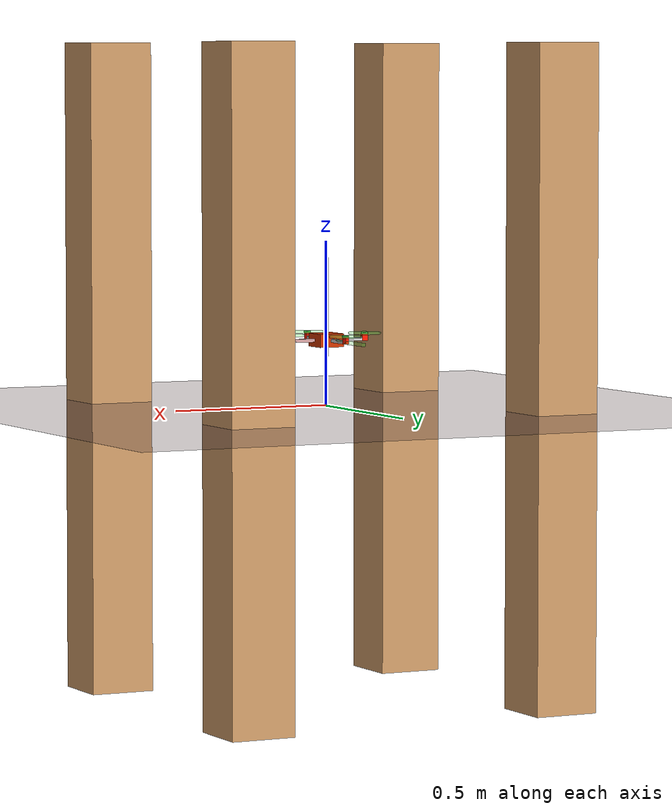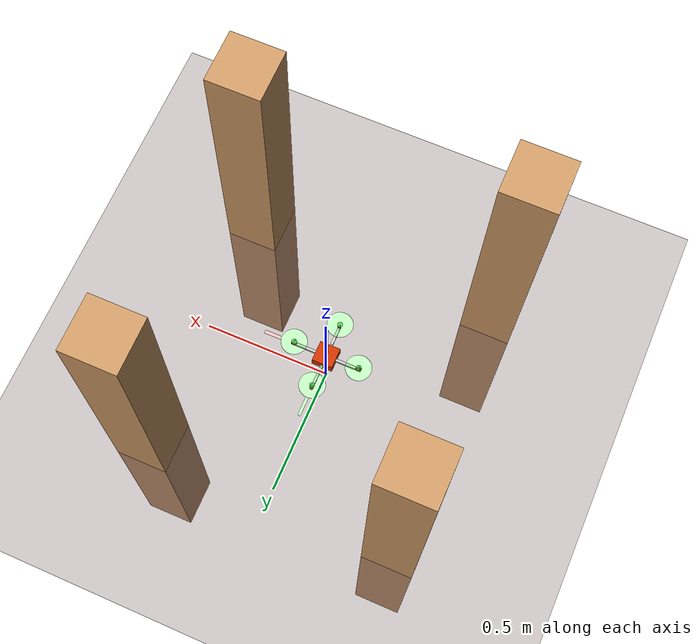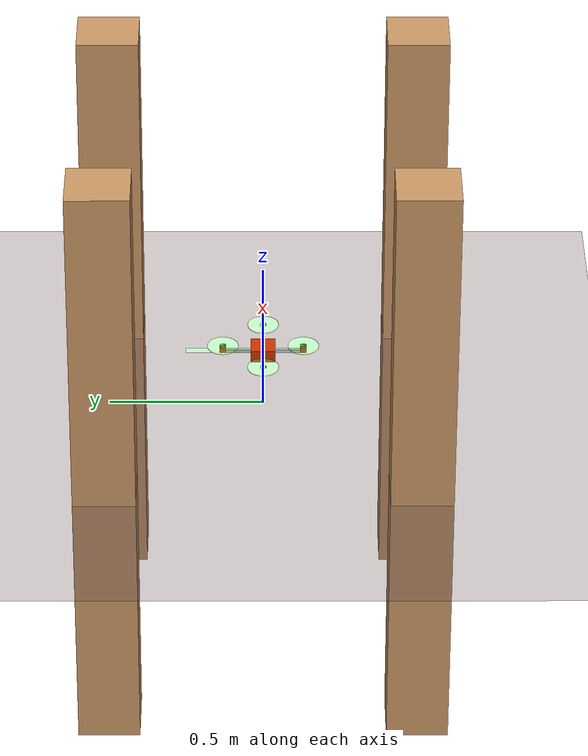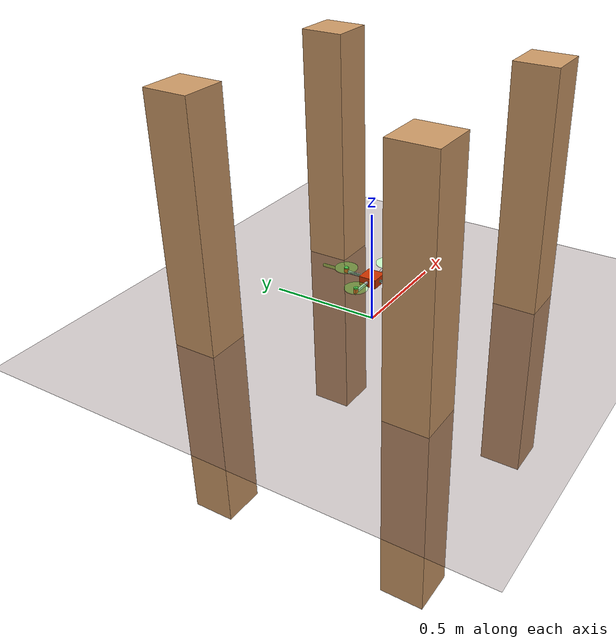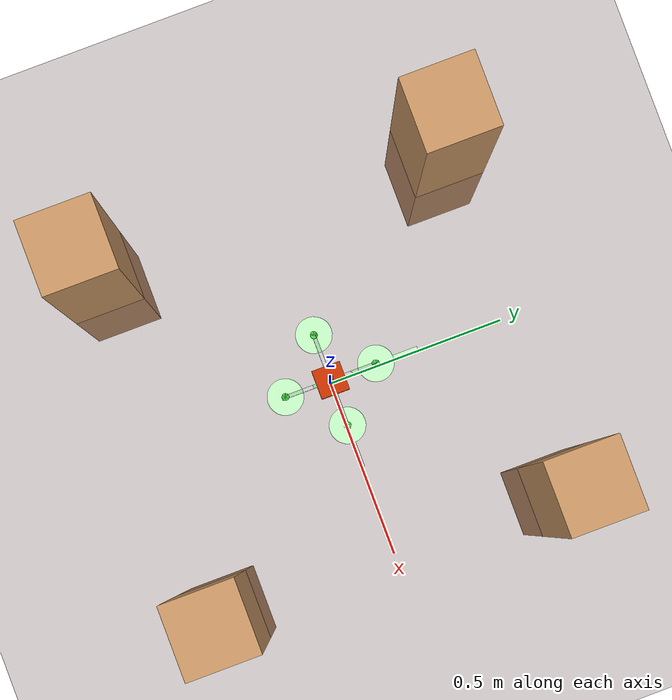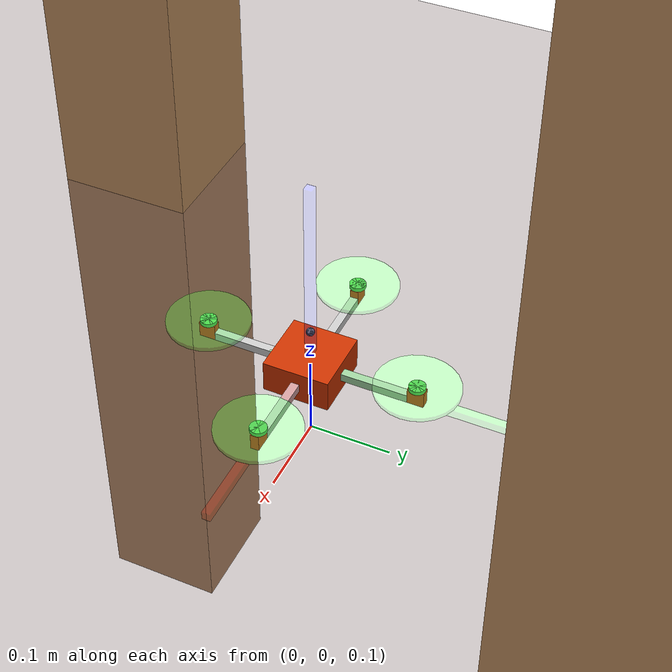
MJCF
<!--
Quadrotor with `+` configuration.
Front: Along body X-axis
-->

<mujoco model="quadrotorplus">
    <compiler angle="degree" inertiafromgeom="true" coordinate="local"/>
    <option	timestep="0.01" gravity="0 0 -9.81" density="1" viscosity="1e-5" integrator="RK4"/>

    <default>
        <joint armature="1" damping="1" limited="true"/>
        <geom conaffinity="0" condim="3" density="5.0" friction="1 0.5 0.5" margin="0.01" rgba="0.8 0.6 0.4 1"/>
    </default>

    <asset>
        <texture builtin="gradient" type="skybox" height="100" width="100" rgb1="1 1 1" rgb2="0 0 0"/>
        <texture name="texgeom" builtin="flat" height="1278" mark="cross" markrgb="1 1 1" random="0.01" rgb1="0.8 0.6 0.4" rgb2="0.8 0.6 0.4" type="cube" width="127"/>
        <texture name="texplane" builtin="checker" height="100" width="100" rgb1="0 0 0" rgb2="0.8 0.8 0.8" type="2d"/>
        <material name="MatPlane" reflectance="0.5" shininess="1" specular="1" texrepeat="60 60" texture="texplane"/>
        <material name="geom" texture="texgeom" texuniform="true"/>
    </asset>

    <worldbody>
        <light cutoff="100" diffuse="1 1 1" dir="-0 0 -1.3" directional="true" exponent="1" pos="0 0 1.3" specular=".1 .1 .1"/>
        <geom conaffinity="1" condim="3" material="MatPlane" name="floor" pos="0 0 0" rgba="0.4 0.3 0.3 1" size="5 5 0.2" type="plane"/>
        <body name="core" pos="0 0 0.2" >
            <geom name="core_geom" type="box" pos="0 0 0" quat="1 0 0 0" size=".04 .04 .02" rgba=".8 .2 0 1" mass=".1"/>
            <joint name="root" type="free" damping="0" armature="0" pos="0 0 0" limited="false"/>
            <geom name="arm_front0" type="box" pos=".08 0 0" size=".04 .005 .005" quat="1 0 0 0" rgba=".8 .8 .8 1" mass=".02"/>
            <geom name="arm_back0" type="box" pos="-.08 0 0" size=".04 .005 .005" quat="0 0 0 1" rgba=".8 .8 .8 1" mass=".02"/>
            <geom name="arm_left0" type="box" pos="0 .08 0" size=".04 .005 .005" quat=".707 0 0 .707" rgba=".8 .8 .8 1" mass=".02"/>
            <geom name="arm_right0" type="box" pos="0 -.08 0" size=".04 .005 .005" quat=".707 0 0 -.707" rgba=".8 .8 .8 1" mass=".02"/>

            <site name="lidar_site_0" pos="0 0 0.05" zaxis="1 0 0" />
            <site name="lidar_site_1" pos="0 0 0.05" zaxis="0 1 0" />
            <site name="lidar_site_2" pos="0 0 0.05" zaxis="-1 0 0 " />
            <site name="lidar_site_3" pos="0 0 0.05" zaxis="0 -1 0" />
            <site name="lidar_site_4" pos="0 0 0.05" euler="90 0 0" />
            <site name="lidar_site_5" pos="0 0 0.05" euler="90 0 0" />
            <site name="lidar_site_6" pos="0 0 0.05" euler="90 0 0 " />
            <site name="lidar_site_7" pos="0 0 0.05" euler="90 0 0" />

            <body name="arm_front1" pos=".12 0 0">
                <geom type="box" pos=".01 0 .005" size=".01 .005 .01" quat="1 0 0 0" rgba="1 .1 0 1" mass=".02"/>
                <body name="thruster0" pos="0.01 0 0.015">
                    <geom type="cylinder" pos="0 0 .0025" size=".05 .0025" quat="1 0 0 0" rgba=".3 1 .3 0.3" mass=".005"/>
                    <site name="motor0" type="cylinder" pos="0 0 .0025" size=".01 .0025" quat="1 0 0 0" rgba=".3 .8 .3 1"/>
                </body>
            </body>

            <body name="arm_back1" pos="-.12 0 0">
                <geom type="box" pos="-.01 0 .005" size=".01 .005 .01" quat="0 0 0 1" rgba="1 .1 0 1" mass=".02"/>
                <body name="thruster1" pos="-0.01 0 .015">
                    <geom type="cylinder" pos="0 0 .0025" size=".05 .0025" quat="1 0 0 0" rgba=".3 1 .3 0.3" mass=".005"/>
                    <site name="motor2" type="cylinder" pos="0 0 .0025" size=".01 .0025" quat="1 0 0 0" rgba=".3 .8 .3 1"/>
                </body>
            </body>

            <body name="arm_left1" pos="0 .12 0">
                <geom type="box" pos="0 .01 .005" size=".01 .005 .01" quat=".7071068 0 0 .7071068" rgba="1 .1 0 1" mass=".02"/>
                <body name="thruster2" pos="0 0.01 0.015">
                    <geom type="cylinder" pos="0 0 .0025" size=".05 .0025" quat="1 0 0 0" rgba=".3 1 .3 0.3" mass=".005"/>
                    <site name="motor1" type="cylinder" pos="0 0 .0025" size=".01 0.0025" quat="1 0 0 0" rgba=".3 .8 .3 1"/>
                </body>
            </body>

            <body name="arm_right1" pos="0 -.12 0">
                <geom type="box" pos="0 -.01 .005" size=".01 .005 .01" quat=".7071068 0 0 -.7071068" rgba="1 .1 0 1" mass=".02"/>
                <body name="thruster3" pos="0 -0.01 .015">
                    <geom type="cylinder" pos="0 0 .0025" size=".05 .0025" quat="1 0 0 0" rgba=".3 1 .3 0.3" mass=".005"/>
                    <site name="motor3" type="cylinder" pos="0 0 .0025" size=".01 .0025" quat="1 0 0 0" rgba=".3 .8 .3 1"/>
                </body>
            </body>

            <site name="x_axis" type="box" pos=".1 .0 .0" size=".15 .005 .005" quat="1 0 0 0" rgba="1 0 0 0.2"/>
            <site name="y_axis" type="box" pos=".0 .1 .0" size=".15 .005 .005" quat=".707 0 0 .707" rgba="0 1 0 0.2"/>
            <site name="z_axis" type="box" pos=".0 .0 .1" size=".15 .005 .005" quat="-.707 0 .707 0" rgba="0 0 1 0.2"/>
        </body>

            <!--Add a few obstacles in form of boxes to the environment-->
        <body name="box1" pos="0.5 0.5 0.1">
            <geom conaffinity="1" condim="3" type="box" size="0.1 0.1 1" rgba="0.8 0.6 0.4 1"/>
        </body>

        <body name="box2" pos="-0.5 0.5 0.1">
            <geom conaffinity="1" condim="3" type="box" size="0.1 0.1 1" rgba="0.8 0.6 0.4 1"/>
        </body>

        <body name="box3" pos="0.5 -0.5 0.1">
            <geom conaffinity="1" condim="3" type="box" size="0.1 0.1 1" rgba="0.8 0.6 0.4 1"/>
        </body>

        <body name="box4" pos="-0.5 -0.5 0.1">
            <geom conaffinity="1" condim="3" type="box" size="0.1 0.1 1" rgba="0.8 0.6 0.4 1"/>
        </body>

    </worldbody>

    <sensor>
        <rangefinder name="lidar0"  site="lidar_site_0"  />
        <rangefinder name="lidar1"  site="lidar_site_1"  />
        <rangefinder name="lidar2"  site="lidar_site_2"  />
        <rangefinder name="lidar3"  site="lidar_site_3"  />
        <rangefinder name="lidar4"  site="lidar_site_4"  />
        <rangefinder name="lidar5"  site="lidar_site_5"  />
        <rangefinder name="lidar6"  site="lidar_site_6"  />
        <rangefinder name="lidar7"  site="lidar_site_7"  />

    </sensor>

    <actuator>
        <motor ctrllimited="true" ctrlrange="0 10" gear="0  0. 1. 0. 0. -0.1" site="motor0"/>
        <motor ctrllimited="true" ctrlrange="0 10" gear="0  0. 1. 0. 0.  0.1" site="motor1"/>
        <motor ctrllimited="true" ctrlrange="0 10" gear="0  0. 1. 0. 0. -0.1" site="motor2"/>
        <motor ctrllimited="true" ctrlrange="0 10" gear="0  0. 1. 0. 0.  0.1" site="motor3"/>
    </actuator>
</mujoco>
